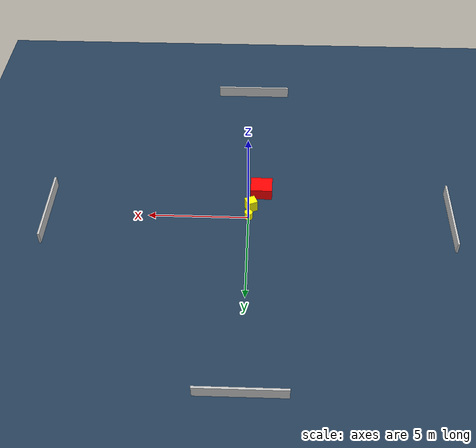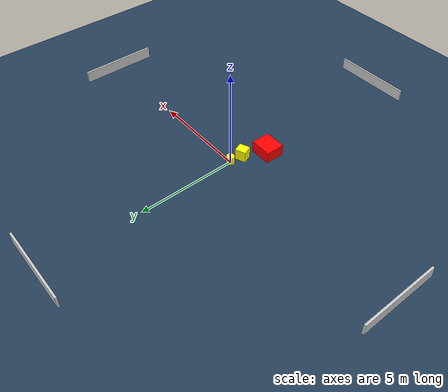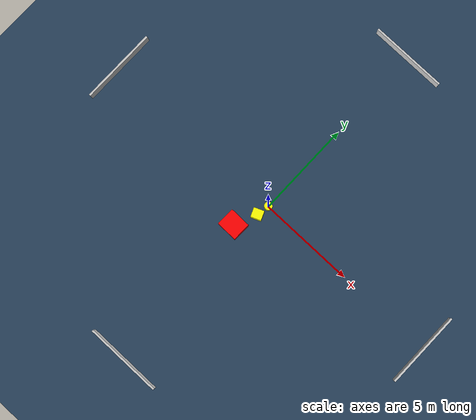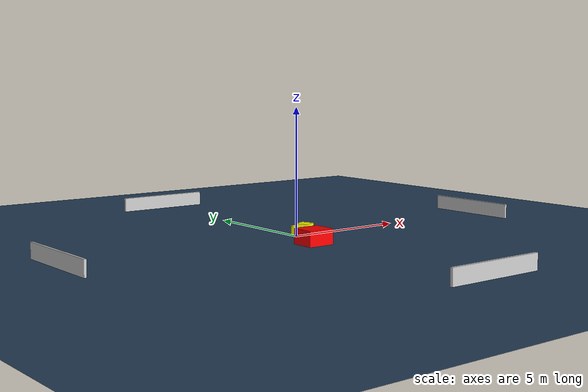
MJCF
<?xml version="1.0" ?>
<mujoco model="generated_environment">
  <option timestep="0.01" integrator="RK4" cone="elliptic"/>
  <default>
    <geom density="1"/>
  </default>
  <asset>
    <texture builtin="gradient" height="3072" name="skybox" rgb1="0.3 0.5 0.7" rgb2="0 0 0" type="skybox" width="512"/>
    <texture builtin="checker" height="300" name="groundplane" rgb1="0.2 0.3 0.4" rgb2="0.1 0.2 0.3" type="2d" width="300"/>
    <material name="groundplane" reflectance="0.2" texrepeat="5 5" texture="groundplane"/>
  </asset>
  <worldbody>
    <light dir="0 0 -1" directional="true" pos="0 0 1.5"/>
    <geom condim="3" friction="0.5 0.005 0.001" material="groundplane" name="floor" pos="0 0 0" size="0 0 0.05" type="plane"/>
    <body name="walls">
      <geom name="wall_1" condim="4" pos="-10.0 0.0 0.3" rgba="0.800000011920929 0.800000011920929 0.800000011920929 1.0" size="0.05 2.0 0.3" type="box"/>
      <geom name="wall_2" condim="4" pos="10.0 0.0 0.3" rgba="0.800000011920929 0.800000011920929 0.800000011920929 1.0" size="0.05 2.0 0.3" type="box"/>
      <geom name="wall_3" condim="4" pos="0.0 -10.0 0.3" rgba="0.800000011920929 0.800000011920929 0.800000011920929 1.0" size="2.0 0.05 0.3" type="box"/>
      <geom name="wall_4" condim="4" pos="0.0 10.0 0.3" rgba="0.800000011920929 0.800000011920929 0.800000011920929 1.0" size="2.0 0.05 0.3" type="box"/>
    </body>
    <body name="robot">
      <joint name="joint_x" type="slide" pos="0 0 0" axis="1 0 0"/>
      <joint name="joint_y" type="slide" pos="0 0 0" axis="0 1 0"/>
      <geom name="robot" type="cylinder" pos="0.0 0.0 0.2" size="0.2 0.2 0.0" mass="5.0" friction="1.0 0.005 0.0001" condim="4" rgba="1.0 1.0 0.0 1.0"/>
    </body>
    <body name="obstacle_1_movable">
      <geom name="obstacle_1_movable" condim="4" pos="-0.1079284613547545 -0.6474512619141087 0.3" euler="0 0 22.466323856141802" friction="0.0 0.005 0.001" rgba="1.0 1.0 0.0 1.0" size="0.2673425024066831 0.2434504964570158 0.3" type="box" mass="0.1"/>
      <joint type="free"/>
    </body>
    <body name="obstacle_2_static">
      <geom name="obstacle_2_static" condim="4" pos="-0.608023364672044 -1.799802658657705 0.3" euler="0 0 269.14925617667427" friction="0.0 0.005 0.001" rgba="1.0 0.0 0.0 1.0" size="0.47814116812631746 0.5459687179077518 0.3" type="box"/>
    </body>
  </worldbody>
  <actuator>
    <motor name="actuator_x" joint="joint_x" gear="1" ctrlrange="-1 1"/>
    <motor name="actuator_y" joint="joint_y" gear="1" ctrlrange="-1 1"/>
  </actuator>
</mujoco>
